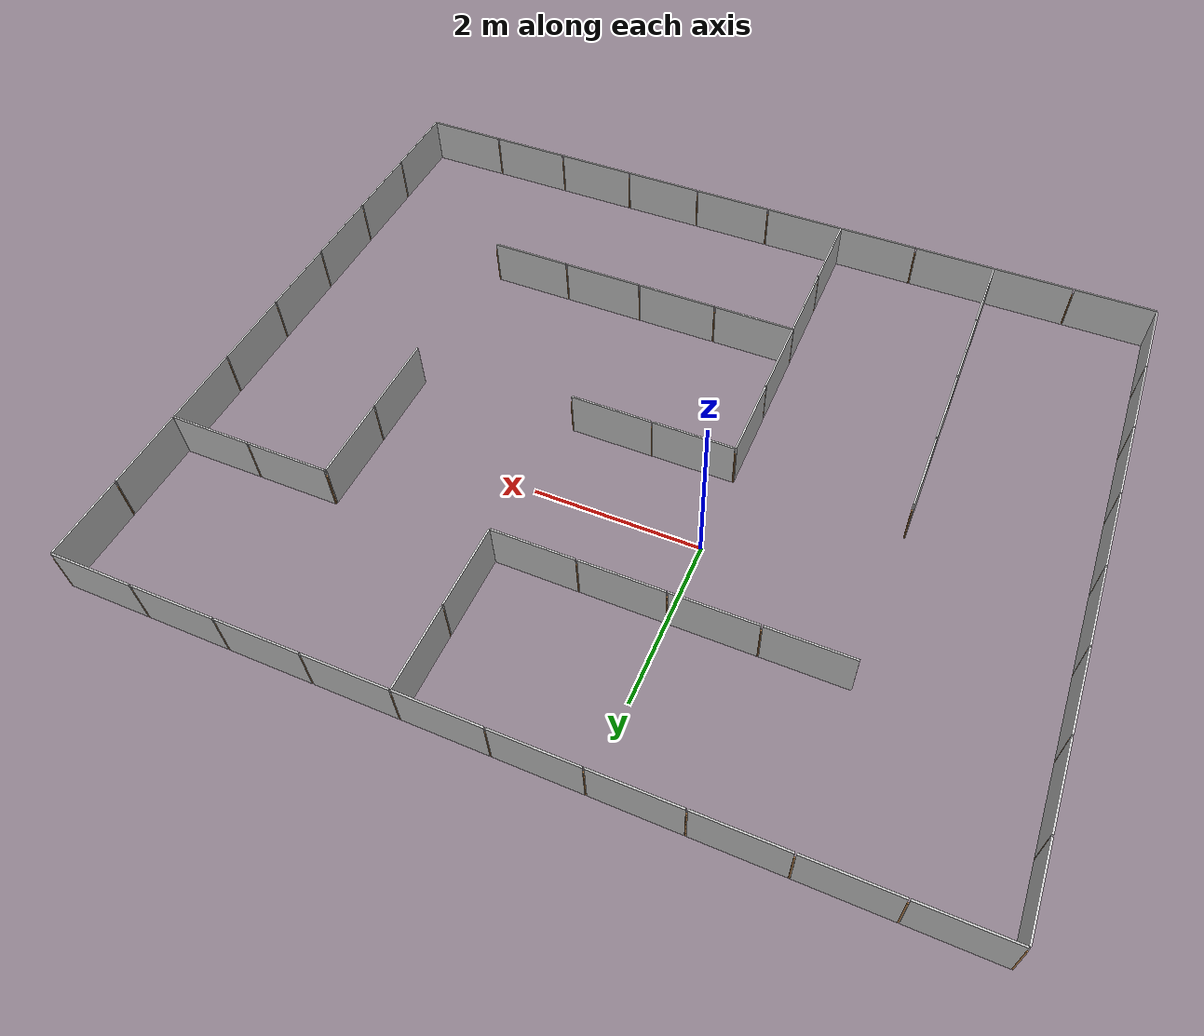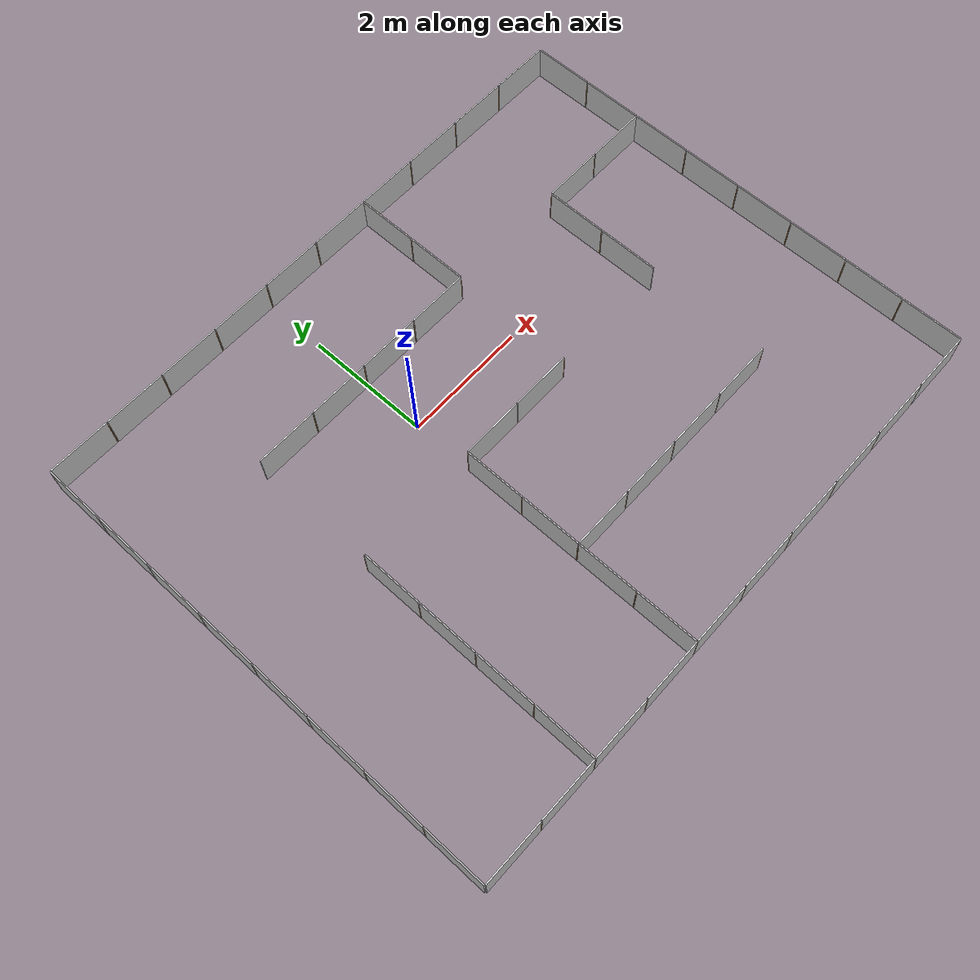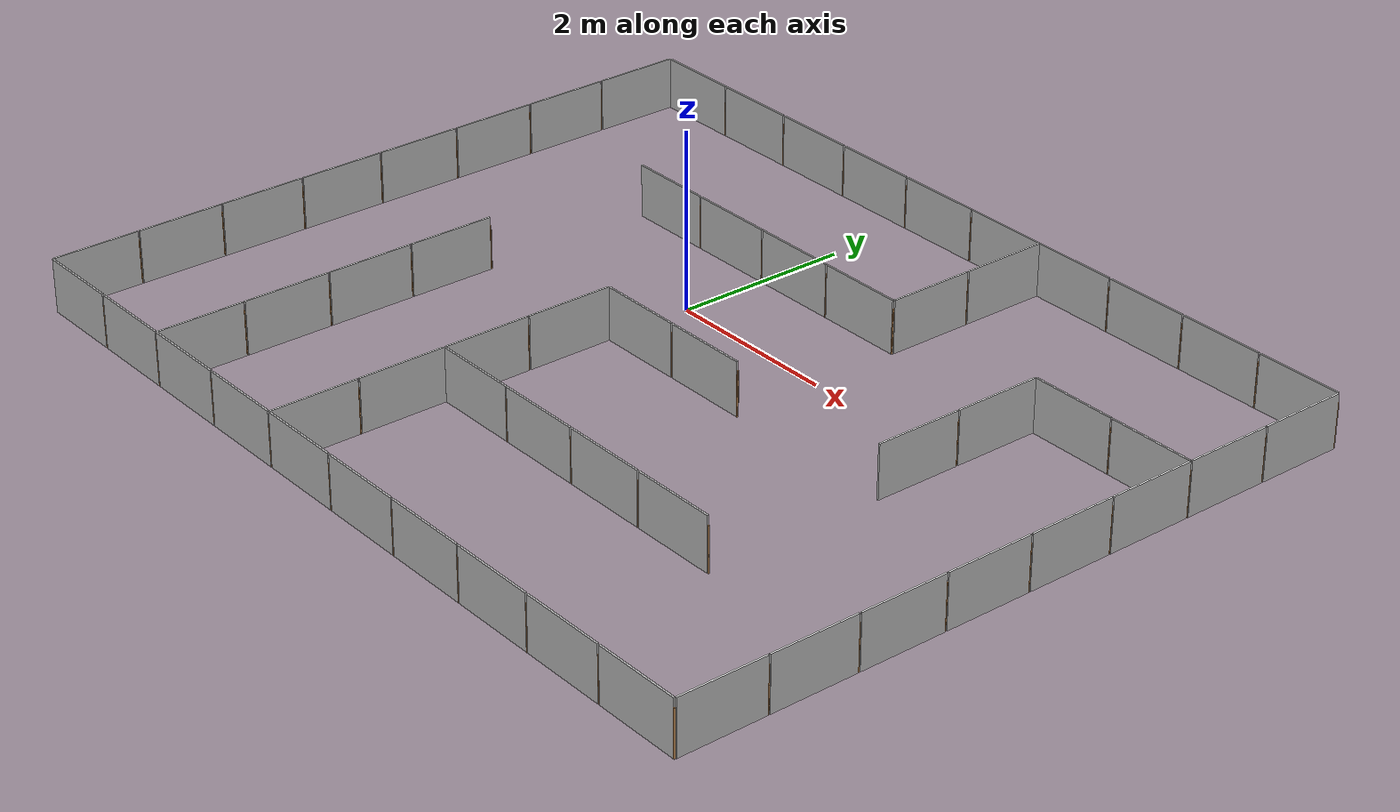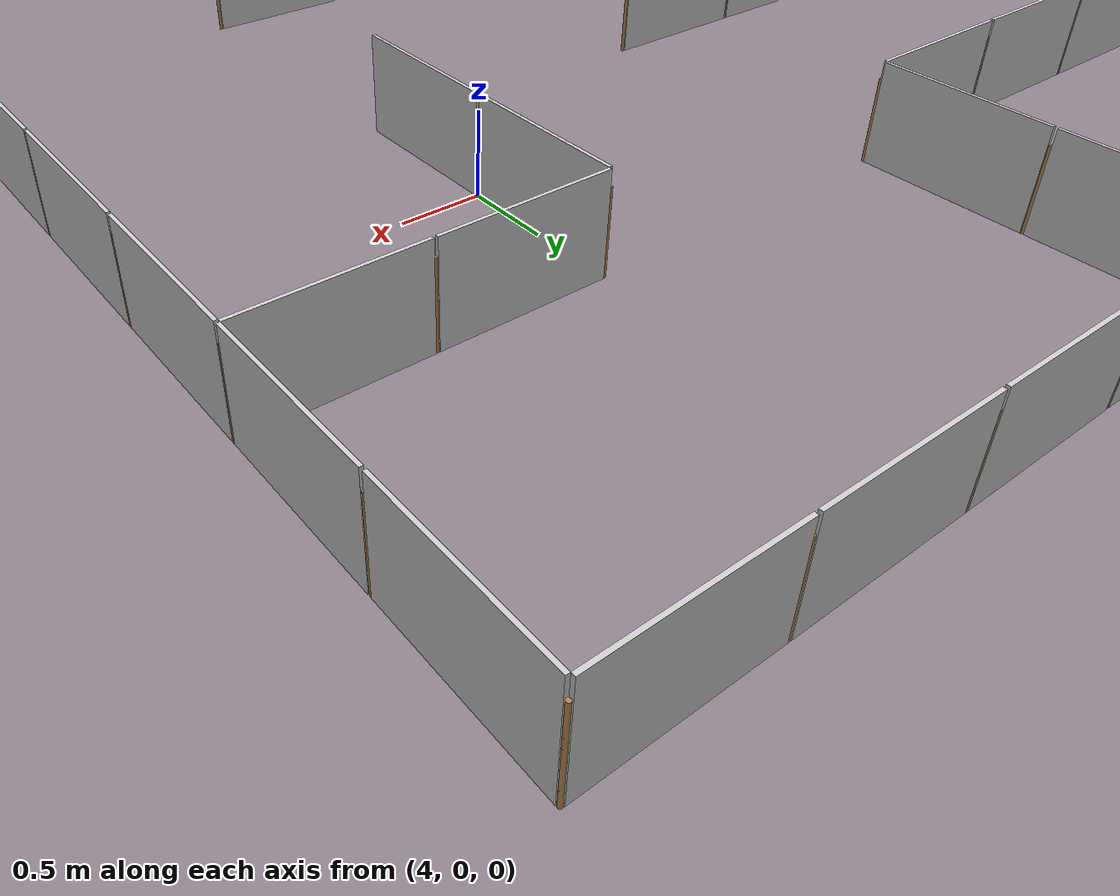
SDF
<?xml version="1.0"?>
<sdf version="1.5">
    <model name="maze_1_6x5">

        <include>
            <name>plywood_panel_0_0_b_1</name>
            <uri>/home/mayank/cognipilot/cranium/src/dream_world/models/plywood_panel</uri>
            <pose>-2 -2 0 0 0 0</pose>
        </include>
        <include>
            <name>wooden_joint_0_0_b_1</name>
            <uri>/home/mayank/cognipilot/cranium/src/dream_world/models/wooden_joint</uri>
            <pose>-2 -2 0 0 0 0</pose>
        </include>

        <include>
            <name>plywood_panel_0_0_b_2</name>
            <uri>/home/mayank/cognipilot/cranium/src/dream_world/models/plywood_panel</uri>
            <pose>-2 -3 0 0 0 0</pose>
        </include>
        <include>
            <name>wooden_joint_0_0_b_2</name>
            <uri>/home/mayank/cognipilot/cranium/src/dream_world/models/wooden_joint</uri>
            <pose>-2 -3 0 0 0 0</pose>
        </include>

        <include>
            <name>plywood_panel_0_0_b_3</name>
            <uri>/home/mayank/cognipilot/cranium/src/dream_world/models/plywood_panel</uri>
            <pose>-2 -4 0 0 0 0</pose>
        </include>
        <include>
            <name>wooden_joint_0_0_b_3</name>
            <uri>/home/mayank/cognipilot/cranium/src/dream_world/models/wooden_joint</uri>
            <pose>-2 -4 0 0 0 0</pose>
        </include>

        <include>
            <name>plywood_panel_0_0_b_4</name>
            <uri>/home/mayank/cognipilot/cranium/src/dream_world/models/plywood_panel</uri>
            <pose>0 -5 0 0 0 -1.5708</pose>
        </include>
        <include>
            <name>wooden_joint_0_0_b_4</name>
            <uri>/home/mayank/cognipilot/cranium/src/dream_world/models/wooden_joint</uri>
            <pose>0 -5 0 0 0 -1.5708</pose>
        </include>

        <include>
            <name>plywood_panel_0_0_b_5</name>
            <uri>/home/mayank/cognipilot/cranium/src/dream_world/models/plywood_panel</uri>
            <pose>1 -5 0 0 0 -1.5708</pose>
        </include>
        <include>
            <name>wooden_joint_0_0_b_5</name>
            <uri>/home/mayank/cognipilot/cranium/src/dream_world/models/wooden_joint</uri>
            <pose>1 -5 0 0 0 -1.5708</pose>
        </include>

        <include>
            <name>plywood_panel_0_0_b_6</name>
            <uri>/home/mayank/cognipilot/cranium/src/dream_world/models/plywood_panel</uri>
            <pose>2 -5 0 0 0 -1.5708</pose>
        </include>
        <include>
            <name>wooden_joint_0_0_b_6</name>
            <uri>/home/mayank/cognipilot/cranium/src/dream_world/models/wooden_joint</uri>
            <pose>2 -5 0 0 0 -1.5708</pose>
        </include>

        <include>
            <name>plywood_panel_0_0_b_7</name>
            <uri>/home/mayank/cognipilot/cranium/src/dream_world/models/plywood_panel</uri>
            <pose>-2 -5 0 0 0 -1.5708</pose>
        </include>
        <include>
            <name>wooden_joint_0_0_b_7</name>
            <uri>/home/mayank/cognipilot/cranium/src/dream_world/models/wooden_joint</uri>
            <pose>-2 -5 0 0 0 -1.5708</pose>
        </include>

        <include>
            <name>plywood_panel_0_0_b_8</name>
            <uri>/home/mayank/cognipilot/cranium/src/dream_world/models/plywood_panel</uri>
            <pose>-3 -5 0 0 0 -1.5708</pose>
        </include>
        <include>
            <name>wooden_joint_0_0_b_8</name>
            <uri>/home/mayank/cognipilot/cranium/src/dream_world/models/wooden_joint</uri>
            <pose>-3 -5 0 0 0 -1.5708</pose>
        </include>

        <include>
            <name>plywood_panel_0_0_b_9</name>
            <uri>/home/mayank/cognipilot/cranium/src/dream_world/models/plywood_panel</uri>
            <pose>3 -5 0 0 0 -1.5708</pose>
        </include>
        <include>
            <name>wooden_joint_0_0_b_9</name>
            <uri>/home/mayank/cognipilot/cranium/src/dream_world/models/wooden_joint</uri>
            <pose>3 -5 0 0 0 -1.5708</pose>
        </include>

        <include>
            <name>plywood_panel_0_0_b_10</name>
            <uri>/home/mayank/cognipilot/cranium/src/dream_world/models/plywood_panel</uri>
            <pose>0 -4 0 0 0 0</pose>
        </include>
        <include>
            <name>wooden_joint_0_0_b_10</name>
            <uri>/home/mayank/cognipilot/cranium/src/dream_world/models/wooden_joint</uri>
            <pose>0 -4 0 0 0 0</pose>
        </include>

        <include>
            <name>plywood_panel_0_0_b_11</name>
            <uri>/home/mayank/cognipilot/cranium/src/dream_world/models/plywood_panel</uri>
            <pose>0 -3 0 0 0 0</pose>
        </include>
        <include>
            <name>wooden_joint_0_0_b_11</name>
            <uri>/home/mayank/cognipilot/cranium/src/dream_world/models/wooden_joint</uri>
            <pose>0 -3 0 0 0 0</pose>
        </include>

        <include>
            <name>plywood_panel_0_0_b_12</name>
            <uri>/home/mayank/cognipilot/cranium/src/dream_world/models/plywood_panel</uri>
            <pose>0 -2 0 0 0 0</pose>
        </include>
        <include>
            <name>wooden_joint_0_0_b_12</name>
            <uri>/home/mayank/cognipilot/cranium/src/dream_world/models/wooden_joint</uri>
            <pose>0 -2 0 0 0 0</pose>
        </include>

        <include>
            <name>plywood_panel_0_0_b_13</name>
            <uri>/home/mayank/cognipilot/cranium/src/dream_world/models/plywood_panel</uri>
            <pose>1 -3 0 0 0 -1.5708</pose>
        </include>
        <include>
            <name>wooden_joint_0_0_b_13</name>
            <uri>/home/mayank/cognipilot/cranium/src/dream_world/models/wooden_joint</uri>
            <pose>1 -3 0 0 0 -1.5708</pose>
        </include>

        <include>
            <name>plywood_panel_0_0_b_14</name>
            <uri>/home/mayank/cognipilot/cranium/src/dream_world/models/plywood_panel</uri>
            <pose>2 -3 0 0 0 -1.5708</pose>
        </include>
        <include>
            <name>wooden_joint_0_0_b_14</name>
            <uri>/home/mayank/cognipilot/cranium/src/dream_world/models/wooden_joint</uri>
            <pose>2 -3 0 0 0 -1.5708</pose>
        </include>

        <include>
            <name>plywood_panel_0_0_b_15</name>
            <uri>/home/mayank/cognipilot/cranium/src/dream_world/models/plywood_panel</uri>
            <pose>3 -3 0 0 0 -1.5708</pose>
        </include>
        <include>
            <name>wooden_joint_0_0_b_15</name>
            <uri>/home/mayank/cognipilot/cranium/src/dream_world/models/wooden_joint</uri>
            <pose>3 -3 0 0 0 -1.5708</pose>
        </include>

        <include>
            <name>plywood_panel_0_0_b_16</name>
            <uri>/home/mayank/cognipilot/cranium/src/dream_world/models/plywood_panel</uri>
            <pose>4 -5 0 0 0 -1.5708</pose>
        </include>
        <include>
            <name>wooden_joint_0_0_b_16</name>
            <uri>/home/mayank/cognipilot/cranium/src/dream_world/models/wooden_joint</uri>
            <pose>4 -5 0 0 0 -1.5708</pose>
        </include>

        <include>
            <name>plywood_panel_0_0_b_17</name>
            <uri>/home/mayank/cognipilot/cranium/src/dream_world/models/plywood_panel</uri>
            <pose>5 -5 0 0 0 -1.5708</pose>
        </include>
        <include>
            <name>wooden_joint_0_0_b_17</name>
            <uri>/home/mayank/cognipilot/cranium/src/dream_world/models/wooden_joint</uri>
            <pose>5 -5 0 0 0 -1.5708</pose>
        </include>

        <include>
            <name>plywood_panel_0_0_b_18</name>
            <uri>/home/mayank/cognipilot/cranium/src/dream_world/models/plywood_panel</uri>
            <pose>6 -5 0 0 0 -1.5708</pose>
        </include>
        <include>
            <name>wooden_joint_0_0_b_18</name>
            <uri>/home/mayank/cognipilot/cranium/src/dream_world/models/wooden_joint</uri>
            <pose>6 -5 0 0 0 -1.5708</pose>
        </include>

        <include>
            <name>plywood_panel_0_0_b_19</name>
            <uri>/home/mayank/cognipilot/cranium/src/dream_world/models/plywood_panel</uri>
            <pose>0 1 0 0 0 -1.5708</pose>
        </include>
        <include>
            <name>wooden_joint_0_0_b_19</name>
            <uri>/home/mayank/cognipilot/cranium/src/dream_world/models/wooden_joint</uri>
            <pose>0 1 0 0 0 -1.5708</pose>
        </include>

        <include>
            <name>plywood_panel_0_0_b_20</name>
            <uri>/home/mayank/cognipilot/cranium/src/dream_world/models/plywood_panel</uri>
            <pose>1 -1 0 0 0 -1.5708</pose>
        </include>
        <include>
            <name>wooden_joint_0_0_b_20</name>
            <uri>/home/mayank/cognipilot/cranium/src/dream_world/models/wooden_joint</uri>
            <pose>1 -1 0 0 0 -1.5708</pose>
        </include>

        <include>
            <name>plywood_panel_0_0_b_21</name>
            <uri>/home/mayank/cognipilot/cranium/src/dream_world/models/plywood_panel</uri>
            <pose>2 -1 0 0 0 -1.5708</pose>
        </include>
        <include>
            <name>wooden_joint_0_0_b_21</name>
            <uri>/home/mayank/cognipilot/cranium/src/dream_world/models/wooden_joint</uri>
            <pose>2 -1 0 0 0 -1.5708</pose>
        </include>

        <include>
            <name>plywood_panel_0_0_b_22</name>
            <uri>/home/mayank/cognipilot/cranium/src/dream_world/models/plywood_panel</uri>
            <pose>4 -3 0 0 0 -1.5708</pose>
        </include>
        <include>
            <name>wooden_joint_0_0_b_22</name>
            <uri>/home/mayank/cognipilot/cranium/src/dream_world/models/wooden_joint</uri>
            <pose>4 -3 0 0 0 -1.5708</pose>
        </include>

        <include>
            <name>plywood_panel_0_0_b_23</name>
            <uri>/home/mayank/cognipilot/cranium/src/dream_world/models/plywood_panel</uri>
            <pose>-1 1 0 0 0 -1.5708</pose>
        </include>
        <include>
            <name>wooden_joint_0_0_b_23</name>
            <uri>/home/mayank/cognipilot/cranium/src/dream_world/models/wooden_joint</uri>
            <pose>-1 1 0 0 0 -1.5708</pose>
        </include>

        <include>
            <name>plywood_panel_0_0_b_24</name>
            <uri>/home/mayank/cognipilot/cranium/src/dream_world/models/plywood_panel</uri>
            <pose>-1 -5 0 0 0 -1.5708</pose>
        </include>
        <include>
            <name>wooden_joint_0_0_b_24</name>
            <uri>/home/mayank/cognipilot/cranium/src/dream_world/models/wooden_joint</uri>
            <pose>-1 -5 0 0 0 -1.5708</pose>
        </include>

        <include>
            <name>plywood_panel_0_0_b_25</name>
            <uri>/home/mayank/cognipilot/cranium/src/dream_world/models/plywood_panel</uri>
            <pose>1 1 0 0 0 -1.5708</pose>
        </include>
        <include>
            <name>wooden_joint_0_0_b_25</name>
            <uri>/home/mayank/cognipilot/cranium/src/dream_world/models/wooden_joint</uri>
            <pose>1 1 0 0 0 -1.5708</pose>
        </include>

        <include>
            <name>plywood_panel_0_0_b_26</name>
            <uri>/home/mayank/cognipilot/cranium/src/dream_world/models/plywood_panel</uri>
            <pose>-2 -1 0 0 0 0</pose>
        </include>
        <include>
            <name>wooden_joint_0_0_b_26</name>
            <uri>/home/mayank/cognipilot/cranium/src/dream_world/models/wooden_joint</uri>
            <pose>-2 -1 0 0 0 0</pose>
        </include>

        <include>
            <name>plywood_panel_0_0_b_27</name>
            <uri>/home/mayank/cognipilot/cranium/src/dream_world/models/plywood_panel</uri>
            <pose>6 -4 0 0 0 0</pose>
        </include>
        <include>
            <name>wooden_joint_0_0_b_27</name>
            <uri>/home/mayank/cognipilot/cranium/src/dream_world/models/wooden_joint</uri>
            <pose>6 -4 0 0 0 0</pose>
        </include>

        <include>
            <name>plywood_panel_0_0_b_28</name>
            <uri>/home/mayank/cognipilot/cranium/src/dream_world/models/plywood_panel</uri>
            <pose>6 -3 0 0 0 0</pose>
        </include>
        <include>
            <name>wooden_joint_0_0_b_28</name>
            <uri>/home/mayank/cognipilot/cranium/src/dream_world/models/wooden_joint</uri>
            <pose>6 -3 0 0 0 0</pose>
        </include>

        <include>
            <name>plywood_panel_0_0_b_29</name>
            <uri>/home/mayank/cognipilot/cranium/src/dream_world/models/plywood_panel</uri>
            <pose>6 -2 0 0 0 0</pose>
        </include>
        <include>
            <name>wooden_joint_0_0_b_29</name>
            <uri>/home/mayank/cognipilot/cranium/src/dream_world/models/wooden_joint</uri>
            <pose>6 -2 0 0 0 0</pose>
        </include>

        <include>
            <name>plywood_panel_0_0_b_30</name>
            <uri>/home/mayank/cognipilot/cranium/src/dream_world/models/plywood_panel</uri>
            <pose>6 -1 0 0 0 0</pose>
        </include>
        <include>
            <name>wooden_joint_0_0_b_30</name>
            <uri>/home/mayank/cognipilot/cranium/src/dream_world/models/wooden_joint</uri>
            <pose>6 -1 0 0 0 0</pose>
        </include>

        <include>
            <name>plywood_panel_0_0_b_31</name>
            <uri>/home/mayank/cognipilot/cranium/src/dream_world/models/plywood_panel</uri>
            <pose>6 0 0 0 0 0</pose>
        </include>
        <include>
            <name>wooden_joint_0_0_b_31</name>
            <uri>/home/mayank/cognipilot/cranium/src/dream_world/models/wooden_joint</uri>
            <pose>6 0 0 0 0 0</pose>
        </include>

        <include>
            <name>plywood_panel_0_0_b_32</name>
            <uri>/home/mayank/cognipilot/cranium/src/dream_world/models/plywood_panel</uri>
            <pose>6 1 0 0 0 0</pose>
        </include>
        <include>
            <name>wooden_joint_0_0_b_32</name>
            <uri>/home/mayank/cognipilot/cranium/src/dream_world/models/wooden_joint</uri>
            <pose>6 1 0 0 0 0</pose>
        </include>

        <include>
            <name>plywood_panel_0_0_b_33</name>
            <uri>/home/mayank/cognipilot/cranium/src/dream_world/models/plywood_panel</uri>
            <pose>-4 1 0 0 0 0</pose>
        </include>
        <include>
            <name>wooden_joint_0_0_b_33</name>
            <uri>/home/mayank/cognipilot/cranium/src/dream_world/models/wooden_joint</uri>
            <pose>-4 1 0 0 0 0</pose>
        </include>

        <include>
            <name>plywood_panel_0_0_b_34</name>
            <uri>/home/mayank/cognipilot/cranium/src/dream_world/models/plywood_panel</uri>
            <pose>-4 0 0 0 0 0</pose>
        </include>
        <include>
            <name>wooden_joint_0_0_b_34</name>
            <uri>/home/mayank/cognipilot/cranium/src/dream_world/models/wooden_joint</uri>
            <pose>-4 0 0 0 0 0</pose>
        </include>

        <include>
            <name>plywood_panel_0_0_b_35</name>
            <uri>/home/mayank/cognipilot/cranium/src/dream_world/models/plywood_panel</uri>
            <pose>-4 -1 0 0 0 0</pose>
        </include>
        <include>
            <name>wooden_joint_0_0_b_35</name>
            <uri>/home/mayank/cognipilot/cranium/src/dream_world/models/wooden_joint</uri>
            <pose>-4 -1 0 0 0 0</pose>
        </include>

        <include>
            <name>plywood_panel_0_0_b_36</name>
            <uri>/home/mayank/cognipilot/cranium/src/dream_world/models/plywood_panel</uri>
            <pose>-4 -2 0 0 0 0</pose>
        </include>
        <include>
            <name>wooden_joint_0_0_b_36</name>
            <uri>/home/mayank/cognipilot/cranium/src/dream_world/models/wooden_joint</uri>
            <pose>-4 -2 0 0 0 0</pose>
        </include>

        <include>
            <name>plywood_panel_0_0_b_37</name>
            <uri>/home/mayank/cognipilot/cranium/src/dream_world/models/plywood_panel</uri>
            <pose>-4 -3 0 0 0 0</pose>
        </include>
        <include>
            <name>wooden_joint_0_0_b_37</name>
            <uri>/home/mayank/cognipilot/cranium/src/dream_world/models/wooden_joint</uri>
            <pose>-4 -3 0 0 0 0</pose>
        </include>

        <include>
            <name>plywood_panel_0_0_b_38</name>
            <uri>/home/mayank/cognipilot/cranium/src/dream_world/models/plywood_panel</uri>
            <pose>-4 -4 0 0 0 0</pose>
        </include>
        <include>
            <name>wooden_joint_0_0_b_38</name>
            <uri>/home/mayank/cognipilot/cranium/src/dream_world/models/wooden_joint</uri>
            <pose>-4 -4 0 0 0 0</pose>
        </include>

        <include>
            <name>plywood_panel_0_0_b_39</name>
            <uri>/home/mayank/cognipilot/cranium/src/dream_world/models/plywood_panel</uri>
            <pose>0 -1 0 0 0 0</pose>
        </include>
        <include>
            <name>wooden_joint_0_0_b_39</name>
            <uri>/home/mayank/cognipilot/cranium/src/dream_world/models/wooden_joint</uri>
            <pose>0 -1 0 0 0 0</pose>
        </include>

        <include>
            <name>plywood_panel_0_0_b_40</name>
            <uri>/home/mayank/cognipilot/cranium/src/dream_world/models/plywood_panel</uri>
            <pose>2 1 0 0 0 -1.5708</pose>
        </include>
        <include>
            <name>wooden_joint_0_0_b_40</name>
            <uri>/home/mayank/cognipilot/cranium/src/dream_world/models/wooden_joint</uri>
            <pose>2 1 0 0 0 -1.5708</pose>
        </include>

        <include>
            <name>plywood_panel_0_0_b_41</name>
            <uri>/home/mayank/cognipilot/cranium/src/dream_world/models/plywood_panel</uri>
            <pose>5 1 0 0 0 -1.5708</pose>
        </include>
        <include>
            <name>wooden_joint_0_0_b_41</name>
            <uri>/home/mayank/cognipilot/cranium/src/dream_world/models/wooden_joint</uri>
            <pose>5 1 0 0 0 -1.5708</pose>
        </include>

        <include>
            <name>plywood_panel_0_0_b_42</name>
            <uri>/home/mayank/cognipilot/cranium/src/dream_world/models/plywood_panel</uri>
            <pose>6 1 0 0 0 -1.5708</pose>
        </include>
        <include>
            <name>wooden_joint_0_0_b_42</name>
            <uri>/home/mayank/cognipilot/cranium/src/dream_world/models/wooden_joint</uri>
            <pose>6 1 0 0 0 -1.5708</pose>
        </include>

        <include>
            <name>plywood_panel_0_0_b_43</name>
            <uri>/home/mayank/cognipilot/cranium/src/dream_world/models/plywood_panel</uri>
            <pose>4 1 0 0 0 0</pose>
        </include>
        <include>
            <name>wooden_joint_0_0_b_43</name>
            <uri>/home/mayank/cognipilot/cranium/src/dream_world/models/wooden_joint</uri>
            <pose>4 1 0 0 0 0</pose>
        </include>

        <include>
            <name>plywood_panel_0_0_b_44</name>
            <uri>/home/mayank/cognipilot/cranium/src/dream_world/models/plywood_panel</uri>
            <pose>4 0 0 0 0 0</pose>
        </include>
        <include>
            <name>wooden_joint_0_0_b_44</name>
            <uri>/home/mayank/cognipilot/cranium/src/dream_world/models/wooden_joint</uri>
            <pose>4 0 0 0 0 0</pose>
        </include>

        <include>
            <name>plywood_panel_0_0_b_45</name>
            <uri>/home/mayank/cognipilot/cranium/src/dream_world/models/plywood_panel</uri>
            <pose>6 2 0 0 0 0</pose>
        </include>
        <include>
            <name>wooden_joint_0_0_b_45</name>
            <uri>/home/mayank/cognipilot/cranium/src/dream_world/models/wooden_joint</uri>
            <pose>6 2 0 0 0 0</pose>
        </include>

        <include>
            <name>plywood_panel_0_0_b_46</name>
            <uri>/home/mayank/cognipilot/cranium/src/dream_world/models/plywood_panel</uri>
            <pose>6 3 0 0 0 0</pose>
        </include>
        <include>
            <name>wooden_joint_0_0_b_46</name>
            <uri>/home/mayank/cognipilot/cranium/src/dream_world/models/wooden_joint</uri>
            <pose>6 3 0 0 0 0</pose>
        </include>

        <include>
            <name>plywood_panel_0_0_b_47</name>
            <uri>/home/mayank/cognipilot/cranium/src/dream_world/models/plywood_panel</uri>
            <pose>-4 2 0 0 0 0</pose>
        </include>
        <include>
            <name>wooden_joint_0_0_b_47</name>
            <uri>/home/mayank/cognipilot/cranium/src/dream_world/models/wooden_joint</uri>
            <pose>-4 2 0 0 0 0</pose>
        </include>

        <include>
            <name>plywood_panel_0_0_b_48</name>
            <uri>/home/mayank/cognipilot/cranium/src/dream_world/models/plywood_panel</uri>
            <pose>-4 3 0 0 0 0</pose>
        </include>
        <include>
            <name>wooden_joint_0_0_b_48</name>
            <uri>/home/mayank/cognipilot/cranium/src/dream_world/models/wooden_joint</uri>
            <pose>-4 3 0 0 0 0</pose>
        </include>

        <include>
            <name>plywood_panel_0_0_b_49</name>
            <uri>/home/mayank/cognipilot/cranium/src/dream_world/models/plywood_panel</uri>
            <pose>-3 3 0 0 0 -1.5708</pose>
        </include>
        <include>
            <name>wooden_joint_0_0_b_49</name>
            <uri>/home/mayank/cognipilot/cranium/src/dream_world/models/wooden_joint</uri>
            <pose>-3 3 0 0 0 -1.5708</pose>
        </include>

        <include>
            <name>plywood_panel_0_0_b_50</name>
            <uri>/home/mayank/cognipilot/cranium/src/dream_world/models/plywood_panel</uri>
            <pose>-2 3 0 0 0 -1.5708</pose>
        </include>
        <include>
            <name>wooden_joint_0_0_b_50</name>
            <uri>/home/mayank/cognipilot/cranium/src/dream_world/models/wooden_joint</uri>
            <pose>-2 3 0 0 0 -1.5708</pose>
        </include>

        <include>
            <name>plywood_panel_0_0_b_51</name>
            <uri>/home/mayank/cognipilot/cranium/src/dream_world/models/plywood_panel</uri>
            <pose>-1 3 0 0 0 -1.5708</pose>
        </include>
        <include>
            <name>wooden_joint_0_0_b_51</name>
            <uri>/home/mayank/cognipilot/cranium/src/dream_world/models/wooden_joint</uri>
            <pose>-1 3 0 0 0 -1.5708</pose>
        </include>

        <include>
            <name>plywood_panel_0_0_b_52</name>
            <uri>/home/mayank/cognipilot/cranium/src/dream_world/models/plywood_panel</uri>
            <pose>0 3 0 0 0 -1.5708</pose>
        </include>
        <include>
            <name>wooden_joint_0_0_b_52</name>
            <uri>/home/mayank/cognipilot/cranium/src/dream_world/models/wooden_joint</uri>
            <pose>0 3 0 0 0 -1.5708</pose>
        </include>

        <include>
            <name>plywood_panel_0_0_b_53</name>
            <uri>/home/mayank/cognipilot/cranium/src/dream_world/models/plywood_panel</uri>
            <pose>1 3 0 0 0 -1.5708</pose>
        </include>
        <include>
            <name>wooden_joint_0_0_b_53</name>
            <uri>/home/mayank/cognipilot/cranium/src/dream_world/models/wooden_joint</uri>
            <pose>1 3 0 0 0 -1.5708</pose>
        </include>

        <include>
            <name>plywood_panel_0_0_b_54</name>
            <uri>/home/mayank/cognipilot/cranium/src/dream_world/models/plywood_panel</uri>
            <pose>2 3 0 0 0 -1.5708</pose>
        </include>
        <include>
            <name>wooden_joint_0_0_b_54</name>
            <uri>/home/mayank/cognipilot/cranium/src/dream_world/models/wooden_joint</uri>
            <pose>2 3 0 0 0 -1.5708</pose>
        </include>

        <include>
            <name>plywood_panel_0_0_b_55</name>
            <uri>/home/mayank/cognipilot/cranium/src/dream_world/models/plywood_panel</uri>
            <pose>2 3 0 0 0 0</pose>
        </include>
        <include>
            <name>wooden_joint_0_0_b_55</name>
            <uri>/home/mayank/cognipilot/cranium/src/dream_world/models/wooden_joint</uri>
            <pose>2 3 0 0 0 0</pose>
        </include>

        <include>
            <name>plywood_panel_0_0_b_56</name>
            <uri>/home/mayank/cognipilot/cranium/src/dream_world/models/plywood_panel</uri>
            <pose>2 2 0 0 0 0</pose>
        </include>
        <include>
            <name>wooden_joint_0_0_b_56</name>
            <uri>/home/mayank/cognipilot/cranium/src/dream_world/models/wooden_joint</uri>
            <pose>2 2 0 0 0 0</pose>
        </include>

        <include>
            <name>plywood_panel_0_0_b_57</name>
            <uri>/home/mayank/cognipilot/cranium/src/dream_world/models/plywood_panel</uri>
            <pose>3 3 0 0 0 -1.5708</pose>
        </include>
        <include>
            <name>wooden_joint_0_0_b_57</name>
            <uri>/home/mayank/cognipilot/cranium/src/dream_world/models/wooden_joint</uri>
            <pose>3 3 0 0 0 -1.5708</pose>
        </include>

        <include>
            <name>plywood_panel_0_0_b_58</name>
            <uri>/home/mayank/cognipilot/cranium/src/dream_world/models/plywood_panel</uri>
            <pose>4 3 0 0 0 -1.5708</pose>
        </include>
        <include>
            <name>wooden_joint_0_0_b_58</name>
            <uri>/home/mayank/cognipilot/cranium/src/dream_world/models/wooden_joint</uri>
            <pose>4 3 0 0 0 -1.5708</pose>
        </include>

        <include>
            <name>plywood_panel_0_0_b_59</name>
            <uri>/home/mayank/cognipilot/cranium/src/dream_world/models/plywood_panel</uri>
            <pose>5 3 0 0 0 -1.5708</pose>
        </include>
        <include>
            <name>wooden_joint_0_0_b_59</name>
            <uri>/home/mayank/cognipilot/cranium/src/dream_world/models/wooden_joint</uri>
            <pose>5 3 0 0 0 -1.5708</pose>
        </include>

        <include>
            <name>plywood_panel_0_0_b_60</name>
            <uri>/home/mayank/cognipilot/cranium/src/dream_world/models/plywood_panel</uri>
            <pose>6 3 0 0 0 -1.5708</pose>
        </include>
        <include>
            <name>wooden_joint_0_0_b_60</name>
            <uri>/home/mayank/cognipilot/cranium/src/dream_world/models/wooden_joint</uri>
            <pose>6 3 0 0 0 -1.5708</pose>
        </include>

    </model>
</sdf>

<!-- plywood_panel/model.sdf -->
<sdf version="1.4">
    <model name="plywood_panel">
        <static>true</static>

        <link name="main">
            <pose>0 0 0 0 0 0</pose>
            <collision name="collision">
                <pose>0.0 -0.5 0.3 -1.571 0 -1.571</pose>
                <geometry>
                    <box>
                        <size>0.98 0.6 0.02</size>
                    </box>
                </geometry>
            </collision>

            <visual name="visual">
                <!-- offset origin to align to the center of one grid edge and rotate to vertical position -->
                <pose>0.01 -0.01 0 0 -1.571 0</pose>
                <geometry>
                    <mesh>
                        <scale>1.0 1.0 1.0</scale>
                        <!-- measures 0.98 x 0.6 x 0.02 mt, origin is at one corner of the panel -->
                        <uri>/home/mayank/cognipilot/cranium/src/dream_world/models/plywood_panel/meshes/plywood.dae</uri>
                    </mesh>
                </geometry>
            </visual>
        </link>

    </model>
</sdf>

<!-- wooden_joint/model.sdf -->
<sdf version='1.6'>
  <model name='wooden_joint'>
    <link name='link_0'>
      <pose>0 0 0.25 0 -0 0</pose>
      <inertial>
        <mass>0.00215981</mass>
        <inertia>
          <ixx>0.00018028</ixx>
          <ixy>0</ixy>
          <ixz>0</ixz>
          <iyy>0.00018028</iyy>
          <iyz>0</iyz>
          <izz>5.8e-07</izz>
        </inertia>
        <pose>0 0 0 0 -0 0</pose>
      </inertial>
      <gravity>1</gravity>
      <self_collide>0</self_collide>
      <kinematic>0</kinematic>
      <visual name='visual'>
        <pose>0 0 0 0 -0 0</pose>
        <geometry>
          <cylinder>
            <radius>0.01</radius>
            <length>0.5</length>
          </cylinder>
        </geometry>
        <material>
          <lighting>1</lighting>
          <script>
            <uri>file://media/materials/scripts/gazebo.material</uri>
            <name>Gazebo/Wood</name>
          </script>
          <shader type='pixel'>
            <normal_map>__default__</normal_map>
          </shader>
          <ambient>0.3 0.3 0.3 1</ambient>
          <diffuse>0.7 0.7 0.7 1</diffuse>
          <specular>0.01 0.01 0.01 1</specular>
          <emissive>0 0 0 1</emissive>
        </material>
        <transparency>0</transparency>
        <cast_shadows>1</cast_shadows>
      </visual>
      <collision name='collision'>
        <laser_retro>0</laser_retro>
        <max_contacts>10</max_contacts>
        <pose>0 0 0 0 -0 0</pose>
        <geometry>
          <cylinder>
            <radius>0.01</radius>
            <length>0.5</length>
          </cylinder>
        </geometry>
        <surface>
          <friction>
            <ode>
              <mu>1</mu>
              <mu2>1</mu2>
              <fdir1>0 0 0</fdir1>
              <slip1>0</slip1>
              <slip2>0</slip2>
            </ode>
            <torsional>
              <coefficient>1</coefficient>
              <patch_radius>0</patch_radius>
              <surface_radius>0</surface_radius>
              <use_patch_radius>1</use_patch_radius>
              <ode>
                <slip>0</slip>
              </ode>
            </torsional>
          </friction>
          <bounce>
            <restitution_coefficient>0</restitution_coefficient>
            <threshold>1e+06</threshold>
          </bounce>
          <contact>
            <collide_without_contact>0</collide_without_contact>
            <collide_without_contact_bitmask>1</collide_without_contact_bitmask>
            <collide_bitmask>1</collide_bitmask>
            <ode>
              <soft_cfm>0</soft_cfm>
              <soft_erp>0.2</soft_erp>
              <kp>1e+13</kp>
              <kd>1</kd>
              <max_vel>0.01</max_vel>
              <min_depth>0</min_depth>
            </ode>
            <bullet>
              <split_impulse>1</split_impulse>
              <split_impulse_penetration_threshold>-0.01</split_impulse_penetration_threshold>
              <soft_cfm>0</soft_cfm>
              <soft_erp>0.2</soft_erp>
              <kp>1e+13</kp>
              <kd>1</kd>
            </bullet>
          </contact>
        </surface>
      </collision>
    </link>
    <static>1</static>
    <allow_auto_disable>1</allow_auto_disable>
  </model>
</sdf>
